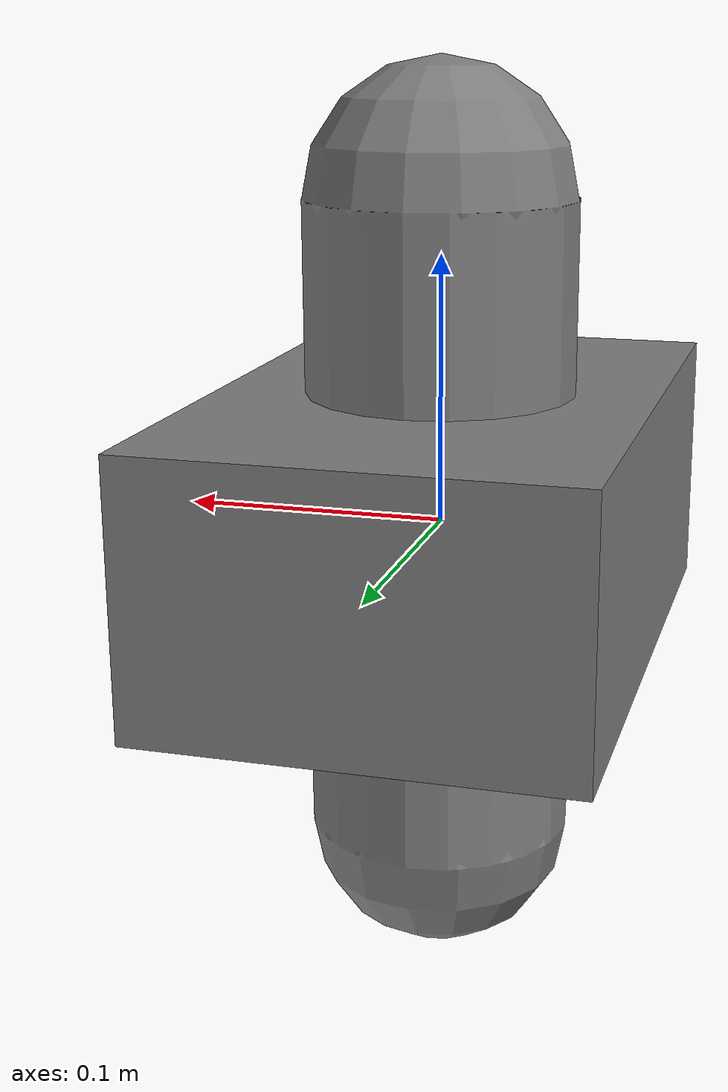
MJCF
<mujoco model="sweep_capsule_box_mg">
  <worldbody>
    <body name="a"><freejoint/><geom name="ga" type="capsule" size="0.05 0.12" margin="0.02" gap="0.03" mass="1"/></body>
    <body name="b"><freejoint/><geom name="gb" type="box" size="0.08 0.12 0.05" margin="0.02" gap="0.03" mass="1"/></body>
  </worldbody>
</mujoco>
